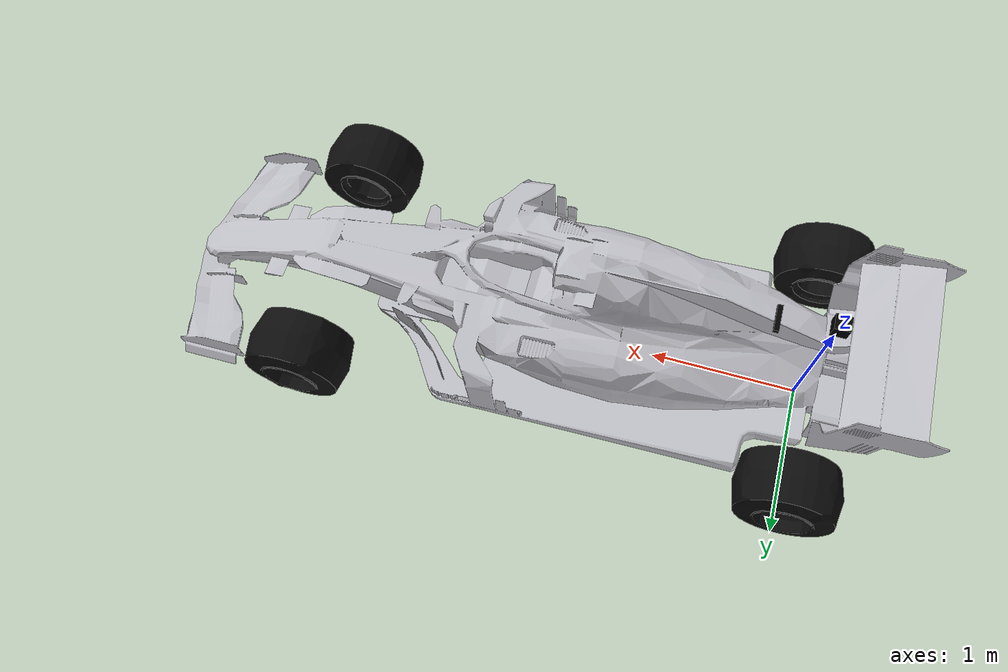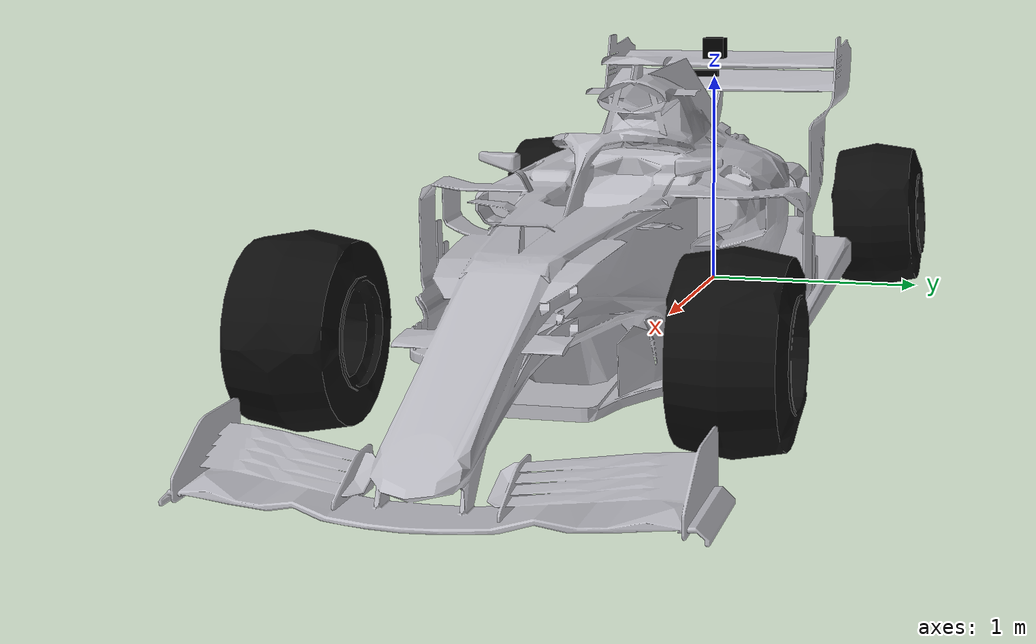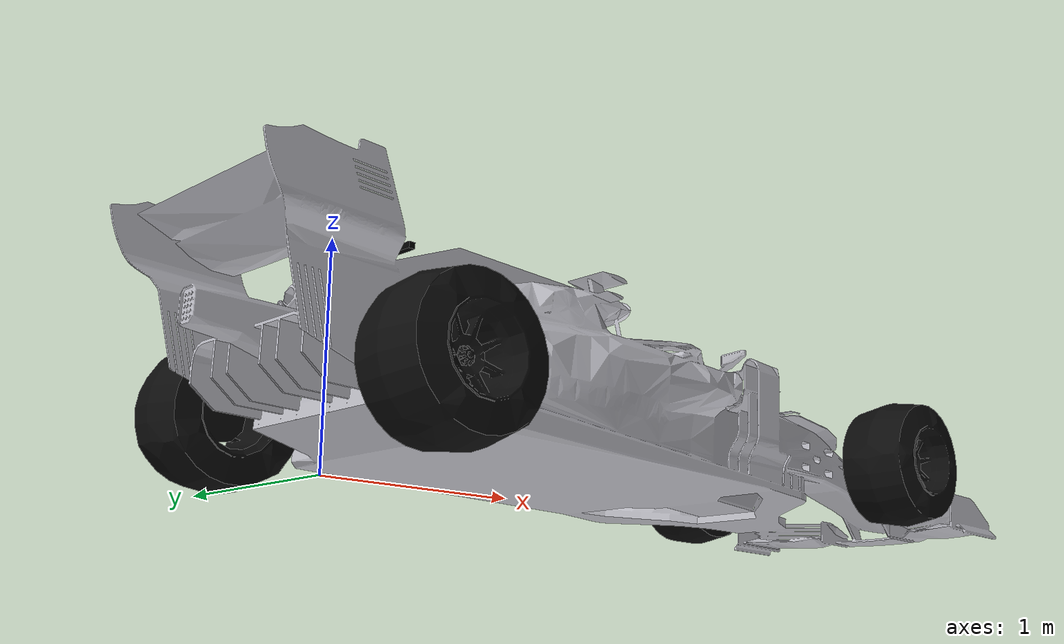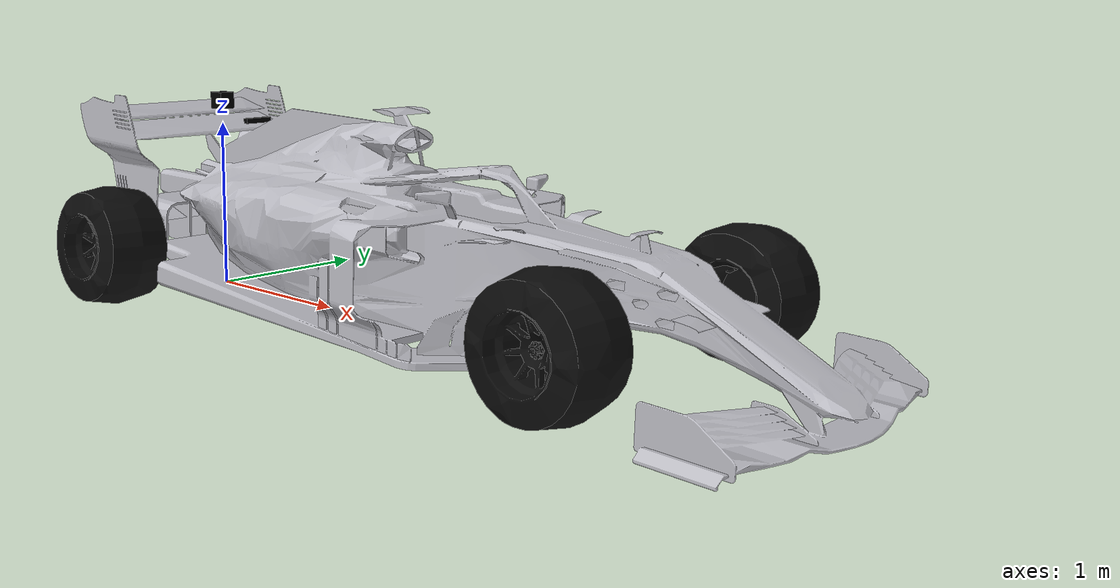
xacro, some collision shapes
<?xml version="1.0"?>
<robot name="eufs" xmlns:xacro="http://www.ros.org/wiki/xacro">

  <xacro:arg name="config_file" default="$(find eufs_racecar)/robots/eufs/configDry.yaml"/>
  <xacro:arg name="forgez_mode" default="Nominal"/>
  <xacro:arg name="forgez_T_core" default="40.0"/>
  <xacro:arg name="forgez_E_lap" default="220.0"/>
  <xacro:arg name="forgez_R_OT" default="0.040"/>
  <!-- Motion plant selection.  DynamicBicycle is the stock EUFS acceleration
       plant; Ackermann is the contact-rich Gazebo velocity plant. -->
  <xacro:arg name="vehicle_model" default="DynamicBicycle"/>
  <xacro:arg name="command_mode" default="acceleration"/>
  <xacro:arg name="publish_tf" default="false"/>
  <xacro:arg name="frame_prefix" default=""/>
  <xacro:arg name="native_remap" default="false"/>
  <xacro:arg name="pub_ground_truth" default="true"/>
  <xacro:arg name="noise_config" default=""/>
  <xacro:arg name="hybrid_profile" default="legacy"/>
  <xacro:arg name="native_hybrid" default="false"/>

  <xacro:include filename="$(find eufs_racecar)/urdf/racecar.xacro"/>
  <!-- Native hybrid owns energy and tyre telemetry.  Keep the historical
       Forgez stack for legacy/Ackermann launches only. -->
  <xacro:unless value="$(arg native_hybrid)">
    <xacro:include filename="$(find eufs_racecar)/urdf/forgez_battery.gazebo"/>
  </xacro:unless>

</robot>

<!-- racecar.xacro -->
<robot name="racecar" xmlns:xacro="http://www.ros.org/wiki/xacro">

  <xacro:include filename="$(find eufs_racecar)/urdf/macros.xacro" />

  <!-- Add chassis and it's inertia link -->

  <link name="base_link" />

  <link name="chassis">
    <visual>
      <xacro:chassis_geometry/>
      <material name="silver" />
    </visual>
  </link>

  <joint name="base_link_joint" type="fixed">
    <origin xyz="0 0 0" rpy="0 0 0" />
    <parent link="base_link" />
    <child link="chassis" />
  </joint>

  <link name="chassis_inertia">
    <inertial>
      <xacro:chassis_inertial_params />
    </inertial>
  </link>

  <joint name="chassis_inertia_joint" type="fixed">
    <origin xyz="0 0 0" rpy="0 0 0" />
    <parent link="chassis" />
    <child link="chassis_inertia" />
  </joint>

  <link name="front_wing">
    <visual>
      <xacro:front_wing_geometry />
      <material name="silver" />
    </visual>
  </link>

  <joint name="front_wing_joint" type="fixed">
    <origin xyz="0 0 0" rpy="0 0 0" />
    <parent link="chassis" />
    <child link="front_wing" />
  </joint>

  <link name="rear_wing">
    <visual>
      <xacro:rear_wing_geometry />
      <material name="silver" />
    </visual>
  </link>

  <joint name="rear_wing_joint" type="fixed">
    <origin xyz="0 0 0" rpy="0 0 0" />
    <parent link="chassis" />
    <child link="rear_wing" />
  </joint>

  <!-- Add the left rear wheel with its joints and tranmissions -->

  <link name="left_rear_wheel">
    <inertial>
      <xacro:left_wheels_inertial_params />
    </inertial>
    <visual>
      <xacro:left_rear_wheel_geometry />
      <material name="tire_black" />
    </visual>
    <collision>
      <xacro:left_wheels_collision_geometry />
    </collision>
  </link>

  <joint name="left_rear_wheel_joint" type="continuous">
    <origin xyz="0.0000 0.8221 0.3459" rpy="1.5708 0 0" />
    <parent link="chassis" />
    <child link="left_rear_wheel" />
    <axis xyz="0 0 -1" />
    <limit effort="400" velocity="80" />
  </joint>

  <xacro:wheel_transmission name="left_rear_wheel" />

  <!-- Add the right rear wheel with its joints and tranmissions -->

  <link name="right_rear_wheel">
    <inertial>
      <xacro:right_wheels_inertial_params />
    </inertial>
    <visual>
      <xacro:right_rear_wheel_geometry />
      <material name="tire_black" />
    </visual>
    <collision>
      <xacro:right_wheels_collision_geometry />
    </collision>
  </link>

  <joint name="right_rear_wheel_joint" type="continuous">
    <origin xyz="-0.0000 -0.8221 0.3472" rpy="1.5708 0 0" />
    <parent link="chassis" />
    <child link="right_rear_wheel" />
    <axis xyz="0 0 -1" />
    <limit effort="400" velocity="80" />
  </joint>

  <xacro:wheel_transmission name="right_rear_wheel" />

  <!-- Add the left steering hinge with its joints and tranmissions -->

  <link name="left_steering_hinge">
    <inertial>
      <xacro:steering_hinge_inertial_params />
    </inertial>
    <visual>
      <xacro:left_steering_hinge_geometry />
      <material name="grey">
        <color rgba="0 0 0 0" />
      </material>
    </visual>
  </link>

  <joint name="left_steering_hinge_joint" type="revolute">
    <origin xyz="3.2800 0.7495 0.3450" rpy="0 1.5708 0" />
    <parent link="chassis" />
    <child link="left_steering_hinge" />
    <axis xyz="-1 0 0" />
    <limit lower="-1.0" upper="1.0" effort="80" velocity="8" />
  </joint>

  <xacro:steering_hinge_transmission name="left_steering_hinge" />

  <!-- Add the right steering hinge with its joints and tranmissions -->

  <link name="right_steering_hinge">
    <inertial>
      <xacro:steering_hinge_inertial_params />
    </inertial>
    <visual>
      <xacro:right_steering_hinge_geometry />
      <material name="grey">
        <color rgba="0 0 0 0" />
      </material>
    </visual>
  </link>

  <joint name="right_steering_hinge_joint" type="revolute">
    <origin xyz="3.2800 -0.7495 0.3450" rpy="0 1.5708 0" />
    <parent link="chassis" />
    <child link="right_steering_hinge" />
    <axis xyz="-1 0 0" />
    <limit lower="-1.0" upper="1.0" effort="80" velocity="8" />
  </joint>

  <xacro:steering_hinge_transmission name="right_steering_hinge" />

  <!-- Add the left front wheel with its joints and tranmissions -->

  <link name="left_front_wheel">
    <inertial>
      <xacro:left_wheels_inertial_params />
    </inertial>
    <visual>
      <xacro:left_front_wheel_geometry />
      <material name="tire_black" />
    </visual>
    <collision>
      <xacro:left_wheels_collision_geometry />
    </collision>
  </link>

  <joint name="left_front_wheel_joint" type="continuous">
    <origin xyz="0 0 0" rpy="1.5708 0 0" />
    <parent link="left_steering_hinge" />
    <child link="left_front_wheel" />
    <axis xyz="0 0 -1" />
    <limit effort="400" velocity="80" />
  </joint>

  <xacro:wheel_transmission name="left_front_wheel" />

  <!-- Add the left front wheel with its joints and tranmissions -->

  <link name="right_front_wheel">
    <inertial>
      <xacro:right_wheels_inertial_params />
    </inertial>
    <visual>
      <xacro:right_front_wheel_geometry />
      <material name="tire_black" />
    </visual>
    <collision>
      <xacro:right_wheels_collision_geometry />
    </collision>
  </link>

  <joint name="right_front_wheel_joint" type="continuous">
    <origin xyz="0 0 0" rpy="1.5708 0 0" />
    <parent link="right_steering_hinge" />
    <child link="right_front_wheel" />
    <axis xyz="0 0 -1" />
    <limit effort="400" velocity="80"/>
  </joint>

  <xacro:wheel_transmission name="right_front_wheel" />

  <!-- Add Hokuyo laser scanner -->

  <link name="laser">
    <inertial>
      <xacro:hokuyo_inertial_params />
    </inertial>
    <collision>
      <origin xyz="0 0 0" rpy="0 0 0"/>
      <geometry>
        <box size="0.1 0.1 0.1"/>
      </geometry>
    </collision>
    <visual>
      <origin xyz="0 0 0" rpy="0 0 0"/>
      <geometry>
        <mesh filename="package://eufs_racecar/meshes/hokuyo.dae"/>
      </geometry>
      <material name="grey" />
    </visual>
  </link>

  <joint name="hokuyo_joint" type="fixed">
    <origin xyz="0.0 0.0 1.1414" rpy="0 0 0"/>
    <parent link="chassis" />
    <child link="laser" />
    <axis xyz="0 0 1" />
  </joint>

  <!-- zed camera -->
  <link name="zed_camera_link">
    <inertial>
      <mass value="1e-5" />
      <origin xyz="0 0 0" rpy="0 0 0"/>
      <inertia ixx="1e-6" ixy="0" ixz="0" iyy="1e-6" iyz="0" izz="1e-6" />
    </inertial>
    <collision>
      <origin xyz="0 0 0" rpy="0 0 0"/>
      <geometry>
        <box size="0.033 0.175 0.030"/>
      </geometry>
    </collision>
    <visual>
      <origin xyz="0 0 0" rpy="0 0 0"/>
      <geometry>
        <box size="0.033 0.175 0.030"/>
      </geometry>
      <material name="grey"/>
    </visual>
  </link>

  <joint name="zed_camera_joint" type="fixed">
    <origin xyz="0.35 0 1.0414" rpy="0 0 0"/>
    <parent link="chassis"/>
    <child link="zed_camera_link"/>
    <axis xyz="0 0 1" />
  </joint>

  <!-- zed camera lenses -->
  <!-- It seems these have to have a non-zero mass to have a camera attached? -->
  <link name="camera_link"><!-- this needs to match the name in zed_wrapper/zed_tf.launch -->
    <inertial>
      <mass value="1e-5" />
      <origin xyz="0 0 0" rpy="0 0 0"/>
      <inertia ixx="1e-6" ixy="0" ixz="0" iyy="1e-6" iyz="0" izz="1e-6" />
    </inertial>
  </link>
  <link name="zed_camera_right_link">
    <inertial>
      <mass value="1e-5" />
      <origin xyz="0 0 0" rpy="0 0 0"/>
      <inertia ixx="1e-6" ixy="0" ixz="0" iyy="1e-6" iyz="0" izz="1e-6" />
    </inertial>
  </link>

  <joint name="zed_camera_left_joint" type="fixed">
    <origin xyz="0 0.06 0" rpy="0 0 0"/>
    <parent link="zed_camera_link"/>
    <child link="camera_link"/>
    <axis xyz="0 0 1" />
  </joint>
  <joint name="zed_camera_right_joint" type="fixed">
    <origin xyz="0 -0.06 0" rpy="0 0 0"/>
    <parent link="zed_camera_link"/>
    <child link="zed_camera_right_link"/>
    <axis xyz="0 0 1" />
  </joint>

  <!-- Add the remaining xacros -->

  <xacro:include filename="$(find eufs_racecar)/urdf/racecar.gazebo" />
  <xacro:include filename="$(find eufs_racecar)/urdf/materials.xacro" />

</robot>

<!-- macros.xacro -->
<robot name="racecar" xmlns:xacro="http://www.ros.org/wiki/xacro">

<!-- inertial parameter macros -->

<xacro:macro name="chassis_inertial_params">
  <origin xyz="0.1477 0 0" rpy="0 0 0" />
  <mass value="740.0" />
  <inertia ixx="120.0" ixy="0"       ixz="0"
                        iyy="450.0"  iyz="0"
                                     izz="520.0" />
</xacro:macro>

<xacro:macro name="left_wheels_inertial_params">
  <origin xyz="0 0 -0.0225" rpy="0 0 0" />
  <mass value="12.0" />
  <inertia ixx="0.535548" ixy="0"       ixz="0"
                       iyy="0.535548" iyz="0"
                                   izz="0.718296" />
</xacro:macro>

<xacro:macro name="right_wheels_inertial_params">
  <origin xyz="0 0 0.0225" rpy="0 0 0" />
  <mass value="12.0" />
  <inertia ixx="0.535548" ixy="0"       ixz="0"
                       iyy="0.535548" iyz="0"
                                   izz="0.718296" />
</xacro:macro>

<xacro:macro name="steering_hinge_inertial_params">
  <origin xyz="0 0 0" rpy="0 0 0" />
  <mass value="1.0" />
  <inertia ixx="0.005" ixy="0"       ixz="0"
                       iyy="0.005" iyz="0"
                                  izz="0.005" />
</xacro:macro>

<xacro:macro name="hokuyo_inertial_params">
  <origin xyz="0 0 0" rpy="0 0 0" />
  <mass value="0.130" />
  <inertia ixx="4E-06" ixy="0"           ixz="0"
                            iyy="4E-06"  iyz="0"
                                              izz="4E-06" />
</xacro:macro>

<!-- geometry macros -->

<xacro:macro name="chassis_geometry">
  <origin xyz="3.28 0 0" rpy="0 0 3.141592653589793" />
  <geometry>
    <mesh filename="package://eufs_racecar/meshes/chassis.STL" />
  </geometry>
</xacro:macro>

<xacro:macro name="front_wing_geometry">
  <origin xyz="0 0 0" rpy="0 0 0" />
  <geometry>
    <mesh filename="package://eufs_racecar/meshes/front_wing.STL" />
  </geometry>
</xacro:macro>

<xacro:macro name="rear_wing_geometry">
  <origin xyz="0 0 0" rpy="0 0 0" />
  <geometry>
    <mesh filename="package://eufs_racecar/meshes/rear_wing.STL" />
  </geometry>
</xacro:macro>

<xacro:macro name="left_rear_wheel_geometry">
  <origin xyz="0 0 0" rpy="0 0 0" />
  <geometry>
    <mesh filename="package://eufs_racecar/meshes/left_rear_wheel.STL" />
  </geometry>
</xacro:macro>

<xacro:macro name="right_rear_wheel_geometry">
  <origin xyz="0 0 0" rpy="0 0 0" />
  <geometry>
    <mesh filename="package://eufs_racecar/meshes/right_rear_wheel.STL" />
  </geometry>
</xacro:macro>

<xacro:macro name="left_front_wheel_geometry">
  <origin xyz="0 0 0" rpy="0 0 0" />
  <geometry>
    <mesh filename="package://eufs_racecar/meshes/left_front_wheel.STL" />
  </geometry>
</xacro:macro>

<xacro:macro name="right_front_wheel_geometry">
  <origin xyz="0 0 0" rpy="0 0 0" />
  <geometry>
    <mesh filename="package://eufs_racecar/meshes/right_front_wheel.STL" />
  </geometry>
</xacro:macro>

<xacro:macro name="left_steering_hinge_geometry">
  <origin xyz="0 0 0" rpy="0 0 0" />
  <geometry>
    <mesh filename="package://eufs_racecar/meshes/left_steering_hinge.STL" />
  </geometry>
</xacro:macro>

<xacro:macro name="right_steering_hinge_geometry">
  <origin xyz="0 0 0" rpy="0 0 0" />
  <geometry>
    <mesh filename="package://eufs_racecar/meshes/right_steering_hinge.STL" />
  </geometry>
</xacro:macro>

<xacro:macro name="left_wheels_collision_geometry">
  <origin xyz="0 0 0" rpy="0 0 0" />
  <geometry>
    <sphere radius="0.346" />
  </geometry>
</xacro:macro>

<xacro:macro name="right_wheels_collision_geometry">
  <origin xyz="0 0 0" rpy="0 0 0" />
  <geometry>
    <sphere radius="0.346" />
  </geometry>
</xacro:macro>

<!-- transmission macros -->

<xacro:macro name="wheel_transmission" params="name">
  <transmission name="${name}_transmission" type="SimpleTransmission">
    <type>transmission_interface/SimpleTransmission</type>
    <joint name="${name}_joint">
      <hardwareInterface>EffortJointInterface</hardwareInterface>
    </joint>
    <actuator name="${name}_motor">
      <hardwareInterface>EffortJointInterface</hardwareInterface>
      <mechanicalReduction>1</mechanicalReduction>
    </actuator>
  </transmission>
</xacro:macro>

<xacro:macro name="steering_hinge_transmission" params="name">
  <transmission name="${name}_transmission" type="SimpleTransmission">
    <type>transmission_interface/SimpleTransmission</type>
    <joint name="${name}_joint">
      <hardwareInterface>EffortJointInterface</hardwareInterface>
    </joint>
    <actuator name="${name}_motor">
      <hardwareInterface>EffortJointInterface</hardwareInterface>
      <mechanicalReduction>1</mechanicalReduction>
    </actuator>
  </transmission>
</xacro:macro>

</robot>

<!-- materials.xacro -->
<robot name="racecar" xmlns:xacro="http://www.ros.org/wiki/xacro">

<material name="black">
  <color rgba="0.05 0.05 0.05 1.0"/>
</material>

<material name="tire_black">
  <color rgba="0.05 0.05 0.05 1.0"/>
</material>

<material name="silver">
  <color rgba="0.75 0.75 0.78 1.0"/>
</material>

<material name="rim_grey">
  <color rgba="0.18 0.18 0.20 1.0"/>
</material>

<material name="blue">
  <color rgba="0.0 0.0 0.8 1.0"/>
</material>

<material name="green">
  <color rgba="0.0 0.8 0.0 1.0"/>
</material>

<material name="grey">
  <color rgba="0.2 0.2 0.2 1.0"/>
</material>

<material name="orange">
  <color rgba="${255/255} ${108/255} ${10/255} 1.0"/>
</material>

<material name="brown">
  <color rgba="${222/255} ${207/255} ${195/255} 1.0"/>
</material>

<material name="red">
  <color rgba="0.8 0.0 0.0 1.0"/>
</material>

<material name="white">
  <color rgba="1.0 1.0 1.0 1.0"/>
</material>

</robot>
